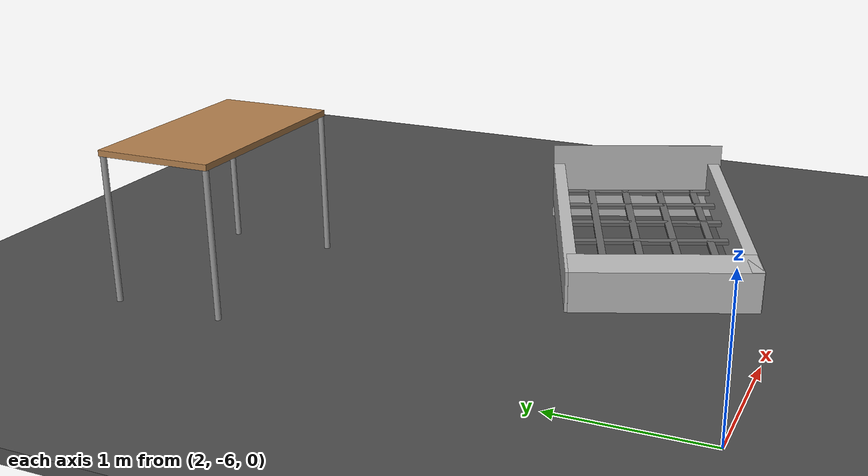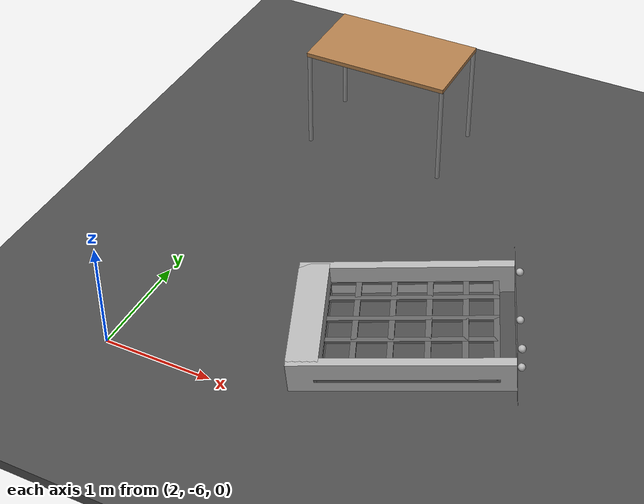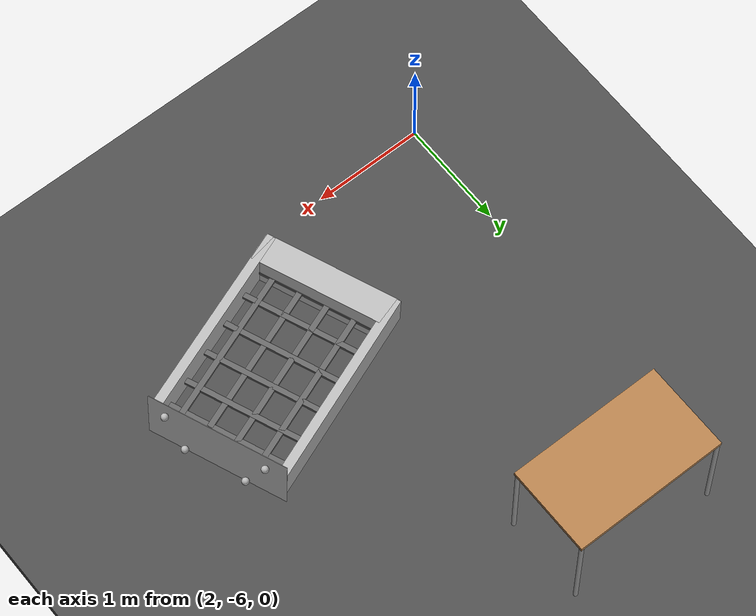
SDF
<sdf version="1.6">
 <world name="default">
  <model name="ground_plane">
   <static>1</static>
   <link name="link">
    <collision name="collision">
     <geometry><plane><normal>0 0 1</normal><size>100 100</size></plane></geometry>
     <surface><friction><ode><mu>100</mu><mu2>50</mu2></ode></friction></surface>
    </collision>
    <visual name="visual">
     <cast_shadows>0</cast_shadows>
     <geometry><plane><normal>0 0 1</normal><size>100 100</size></plane></geometry>
     <material>
      <script><uri>file://media/materials/scripts/gazebo.material</uri><name>Gazebo/Grey</name></script>
     </material>
    </visual>
   </link>
  </model>
  <model name="asphalt_plane">
   <static>1</static>
   <link name="link">
    <collision name="collision"><geometry><box><size>20 20 0.1</size></box></geometry></collision>
    <visual name="visual">
     <cast_shadows>0</cast_shadows>
     <geometry><box><size>20 20 0.1</size></box></geometry>
     <material>
      <script>
       <uri>model://asphalt_plane/materials/scripts</uri>
       <uri>model://asphalt_plane/materials/textures</uri>
       <name>vrc/asphalt</name>
      </script>
     </material>
    </visual>
   </link>
   <pose>0.18195 0.421411 0 0 -0 0</pose>
  </model>
  <model name="frc2016_portcullis">
   <link name="base">
    <inertial>
     <mass>50</mass>
     <pose>0 0 1.02941 0 -0 0</pose>
     <inertia><ixx>3.81711</ixx><ixy>0</ixy><ixz>0</ixz><iyy>4.87698</iyy><iyz>0</iyz><izz>1.6283</izz></inertia>
    </inertial>
    <visual name="platform">
     <pose>0 0 0.07284 0 -0 0</pose>
     <geometry><box><size>1.27 0.5842 0.003175</size></box></geometry>
    </visual>
    <collision name="platform">
     <pose>0 0 0.07284 0 -0 0</pose>
     <geometry><box><size>1.27 0.5842 0.003175</size></box></geometry>
    </collision>
    <visual name="left_column">
     <pose>0.59284 0 0.99042 0 -0 0</pose>
     <geometry><box><size>0.08375 0.28575 1.83198</size></box></geometry>
    </visual>
    <collision name="left_column">
     <pose>0.59284 0 0.99042 0 -0 0</pose>
     <geometry><box><size>0.08375 0.28575 1.83198</size></box></geometry>
    </collision>
    <visual name="right_column">
     <pose>-0.57759 0 0.99042 0 -0 0</pose>
     <geometry><box><size>0.08375 0.28575 1.83198</size></box></geometry>
    </visual>
    <collision name="right_column">
     <pose>-0.57759 0 0.99042 0 -0 0</pose>
     <geometry><box><size>0.08375 0.28575 1.83198</size></box></geometry>
    </collision>
    <visual name="top">
     <pose>-0.00034 0 1.77722 0 -0 0</pose>
     <geometry><box><size>1.22962 0.28575 0.26657</size></box></geometry>
    </visual>
    <collision name="top">
     <pose>-0.00034 0 1.77722 0 -0 0</pose>
     <geometry><box><size>1.22962 0.28575 0.26657</size></box></geometry>
    </collision>
    <visual name="castor1">
     <pose>-0.45651 -0.16234 0.03272 0 -0 0</pose>
     <geometry><sphere><radius>0.03272</radius></sphere></geometry>
    </visual>
    <collision name="castor1">
     <pose>-0.45651 -0.16234 0.03272 0 -0 0</pose>
     <geometry><sphere><radius>0.03272</radius></sphere></geometry>
    </collision>
    <visual name="castor2">
     <pose>-0.27883 0.21836 0.03272 0 -0 0</pose>
     <geometry><sphere><radius>0.03272</radius></sphere></geometry>
    </visual>
    <collision name="castor2">
     <pose>-0.27883 0.21836 0.03272 0 -0 0</pose>
     <geometry><sphere><radius>0.03272</radius></sphere></geometry>
    </collision>
    <visual name="castor3">
     <pose>0.28083 0.21906 0.03272 0 -0 0</pose>
     <geometry><sphere><radius>0.03272</radius></sphere></geometry>
    </visual>
    <collision name="castor3">
     <pose>0.28083 0.21906 0.03272 0 -0 0</pose>
     <geometry><sphere><radius>0.03272</radius></sphere></geometry>
    </collision>
    <visual name="castor4">
     <pose>0.45871 -0.16186 0.03272 0 -0 0</pose>
     <geometry><sphere><radius>0.03272</radius></sphere></geometry>
    </visual>
    <collision name="castor4">
     <pose>0.45871 -0.16186 0.03272 0 -0 0</pose>
     <geometry><sphere><radius>0.03272</radius></sphere></geometry>
    </collision>
   </link>
   <link name="gate">
    <pose>-0.0287 0.02885 0.93327 0 -0 0</pose>
    <inertial>
     <mass>2</mass>
     <inertia><ixx>3.81711</ixx><ixy>0</ixy><ixz>0</ixz><iyy>4.87698</iyy><iyz>0</iyz><izz>1.6283</izz></inertia>
    </inertial>
    <collision name="collision"><geometry><box><size>1.1938 0.02496 1.45732</size></box></geometry></collision>
    <visual name="horz_1">
     <pose>0 0 -0.70326 0 -0 0</pose>
     <geometry><box><size>1.1938 0.02496 0.0508</size></box></geometry>
     <material><ambient>0.4 0.4 0.4 1</ambient><diffuse>0.4 0.4 0.4 1</diffuse></material>
    </visual>
    <visual name="horz_2">
     <pose>0 0 -0.44926 0 -0 0</pose>
     <geometry><box><size>1.1938 0.02496 0.0508</size></box></geometry>
     <material><ambient>0.4 0.4 0.4 1</ambient><diffuse>0.4 0.4 0.4 1</diffuse></material>
    </visual>
    <visual name="horz_3">
     <pose>0 0 -0.14517 0 -0 0</pose>
     <geometry><box><size>1.1938 0.02496 0.0508</size></box></geometry>
     <material><ambient>0.4 0.4 0.4 1</ambient><diffuse>0.4 0.4 0.4 1</diffuse></material>
    </visual>
    <visual name="horz_4">
     <pose>0 0 0.16034 0 -0 0</pose>
     <geometry><box><size>1.1938 0.02496 0.0508</size></box></geometry>
     <material><ambient>0.4 0.4 0.4 1</ambient><diffuse>0.4 0.4 0.4 1</diffuse></material>
    </visual>
    <visual name="horz_5">
     <pose>0 0 0.46514 0 -0 0</pose>
     <geometry><box><size>1.1938 0.02496 0.0508</size></box></geometry>
     <material><ambient>0.4 0.4 0.4 1</ambient><diffuse>0.4 0.4 0.4 1</diffuse></material>
    </visual>
    <visual name="horz_6">
     <pose>0 0 0.72994 0 -0 0</pose>
     <geometry><box><size>1.1938 0.02496 0.0508</size></box></geometry>
     <material><ambient>0.4 0.4 0.4 1</ambient><diffuse>0.4 0.4 0.4 1</diffuse></material>
    </visual>
    <visual name="vert_1">
     <pose>-0.58448 0 0 0 -0 0</pose>
     <geometry><box><size>0.02495 0.02496 1.45732</size></box></geometry>
     <material><ambient>0.4 0.4 0.4 1</ambient><diffuse>0.4 0.4 0.4 1</diffuse></material>
    </visual>
    <visual name="vert_2">
     <pose>-0.38128 0 0 0 -0 0</pose>
     <geometry><box><size>0.0508 0.02496 1.45732</size></box></geometry>
     <material><ambient>0.4 0.4 0.4 1</ambient><diffuse>0.4 0.4 0.4 1</diffuse></material>
    </visual>
    <visual name="vert_3">
     <pose>-0.12728 0 0 0 -0 0</pose>
     <geometry><box><size>0.0508 0.02496 1.45732</size></box></geometry>
     <material><ambient>0.4 0.4 0.4 1</ambient><diffuse>0.4 0.4 0.4 1</diffuse></material>
    </visual>
    <visual name="vert_4">
     <pose>0.12672 0 0 0 -0 0</pose>
     <geometry><box><size>0.0508 0.02496 1.45732</size></box></geometry>
     <material><ambient>0.4 0.4 0.4 1</ambient><diffuse>0.4 0.4 0.4 1</diffuse></material>
    </visual>
    <visual name="vert_5">
     <pose>0.38072 0 0 0 -0 0</pose>
     <geometry><box><size>0.0508 0.02496 1.45732</size></box></geometry>
     <material><ambient>0.4 0.4 0.4 1</ambient><diffuse>0.4 0.4 0.4 1</diffuse></material>
    </visual>
    <visual name="vert_6">
     <pose>0.58392 0 0 0 -0 0</pose>
     <geometry><box><size>0.02495 0.02496 1.45732</size></box></geometry>
     <material><ambient>0.4 0.4 0.4 1</ambient><diffuse>0.4 0.4 0.4 1</diffuse></material>
    </visual>
   </link>
   <joint name="joint" type="prismatic">
    <parent>base</parent>
    <child>gate</child>
    <axis>
     <xyz>0 0 1</xyz>
     <limit><lower>0</lower><upper>1</upper></limit>
     <use_parent_model_frame>0</use_parent_model_frame>
     <dynamics><spring_reference>0</spring_reference><spring_stiffness>0</spring_stiffness></dynamics>
    </axis>
   </joint>
   <pose>5.17718 -4.58641 0.347169 -1.65189 -0 1.95817</pose>
  </model>
  <model name="table">
   <static>0</static>
   <link name="link">
    <collision name="surface">
     <pose>0 0 1 0 -0 0</pose>
     <geometry><box><size>1.5 0.8 0.03</size></box></geometry>
     <surface><friction><ode><mu>0.6</mu><mu2>0.6</mu2></ode></friction></surface>
    </collision>
    <visual name="visual1">
     <pose>0 0 1 0 -0 0</pose>
     <geometry><box><size>1.4 0.8 0.04</size></box></geometry>
     <material>
      <script><uri>file://media/materials/scripts/gazebo.material</uri><name>Gazebo/Wood</name></script>
     </material>
    </visual>
    <collision name="front_left_leg">
     <pose>0.68 0.38 0.5 0 -0 0</pose>
     <geometry><cylinder><radius>0.02</radius><length>1</length></cylinder></geometry>
    </collision>
    <visual name="front_left_leg">
     <pose>0.68 0.38 0.5 0 -0 0</pose>
     <geometry><cylinder><radius>0.02</radius><length>1</length></cylinder></geometry>
     <material>
      <script><uri>file://media/materials/scripts/gazebo.material</uri><name>Gazebo/Grey</name></script>
     </material>
    </visual>
    <collision name="front_right_leg">
     <pose>0.68 -0.38 0.5 0 -0 0</pose>
     <geometry><cylinder><radius>0.02</radius><length>1</length></cylinder></geometry>
    </collision>
    <visual name="front_right_leg">
     <pose>0.68 -0.38 0.5 0 -0 0</pose>
     <geometry><cylinder><radius>0.02</radius><length>1</length></cylinder></geometry>
     <material>
      <script><uri>file://media/materials/scripts/gazebo.material</uri><name>Gazebo/Grey</name></script>
     </material>
    </visual>
    <collision name="back_right_leg">
     <pose>-0.68 -0.38 0.5 0 -0 0</pose>
     <geometry><cylinder><radius>0.02</radius><length>1</length></cylinder></geometry>
    </collision>
    <visual name="back_right_leg">
     <pose>-0.68 -0.38 0.5 0 -0 0</pose>
     <geometry><cylinder><radius>0.02</radius><length>1</length></cylinder></geometry>
     <material>
      <script><uri>file://media/materials/scripts/gazebo.material</uri><name>Gazebo/Grey</name></script>
     </material>
    </visual>
    <collision name="back_left_leg">
     <pose>-0.68 0.38 0.5 0 -0 0</pose>
     <geometry><cylinder><radius>0.02</radius><length>1</length></cylinder></geometry>
    </collision>
    <visual name="back_left_leg">
     <pose>-0.68 0.38 0.5 0 -0 0</pose>
     <geometry><cylinder><radius>0.02</radius><length>1</length></cylinder></geometry>
     <material>
      <script><uri>file://media/materials/scripts/gazebo.material</uri><name>Gazebo/Grey</name></script>
     </material>
    </visual>
    <inertial>
     <inertia><ixx>1</ixx><ixy>0</ixy><ixz>0</ixz><iyy>1</iyy><iyz>0</iyz><izz>1</izz></inertia>
     <mass>1</mass>
    </inertial>
   </link>
   <pose>2.9239 -2.36885 0.05 0 -0 0</pose>
  </model>
 </world>
</sdf>
